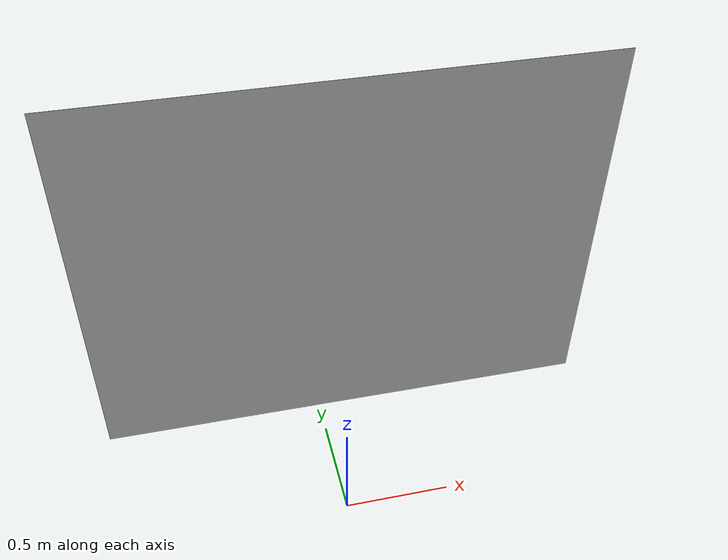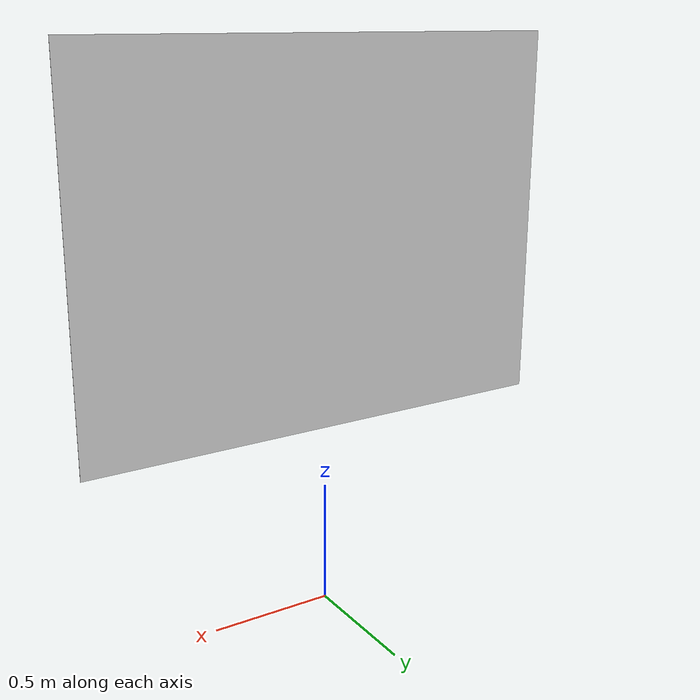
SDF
<?xml version='1.0'?>
<sdf version='1.6'>
<model name='slide-starterkit'>
  <static>1</static>
  <link name='link'>
    <pose frame=''>0 0 1.5 0 -0 0</pose>
    <visual name='visual'>
      <geometry>
        <box>
          <size>2 0.001 1.5</size>
        </box>
      </geometry>
      <material>
        <script>
          <uri>model://slide-starterkit/materials/scripts</uri>
          <uri>model://slide-starterkit/materials/textures</uri>
          <name>Slides/slide_starterkit</name>
        </script>
      </material>
    </visual>
  </link>
</model>
</sdf>
